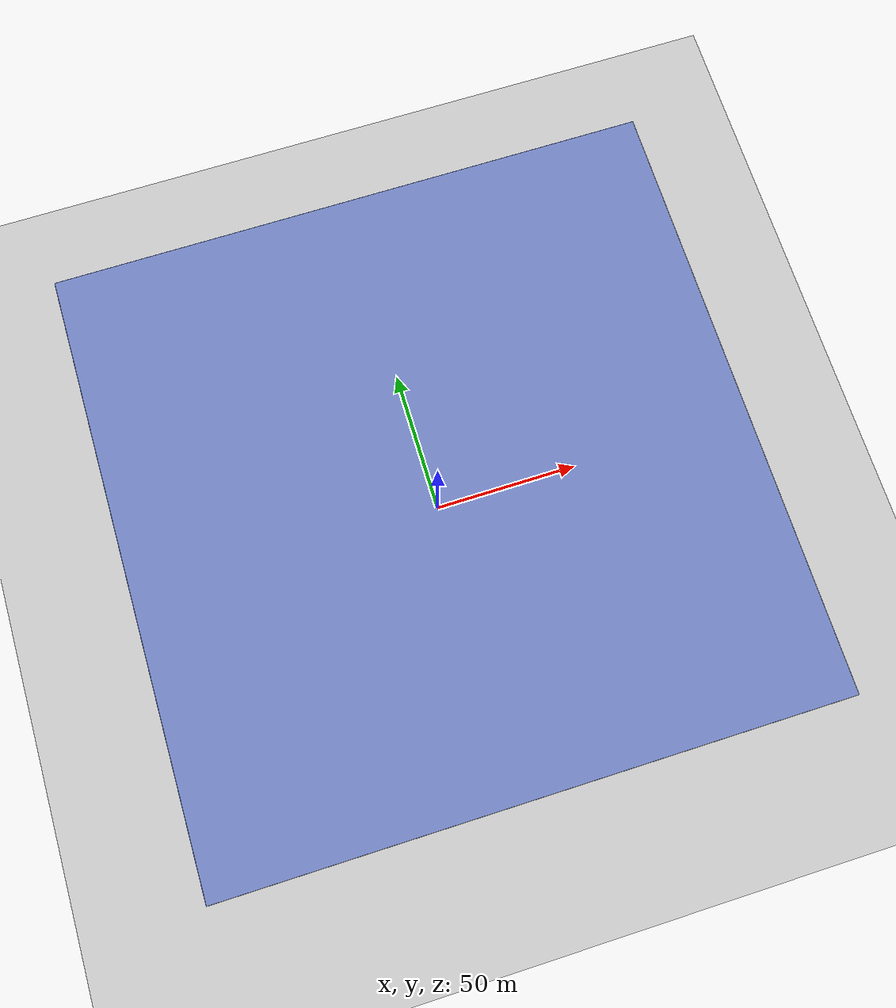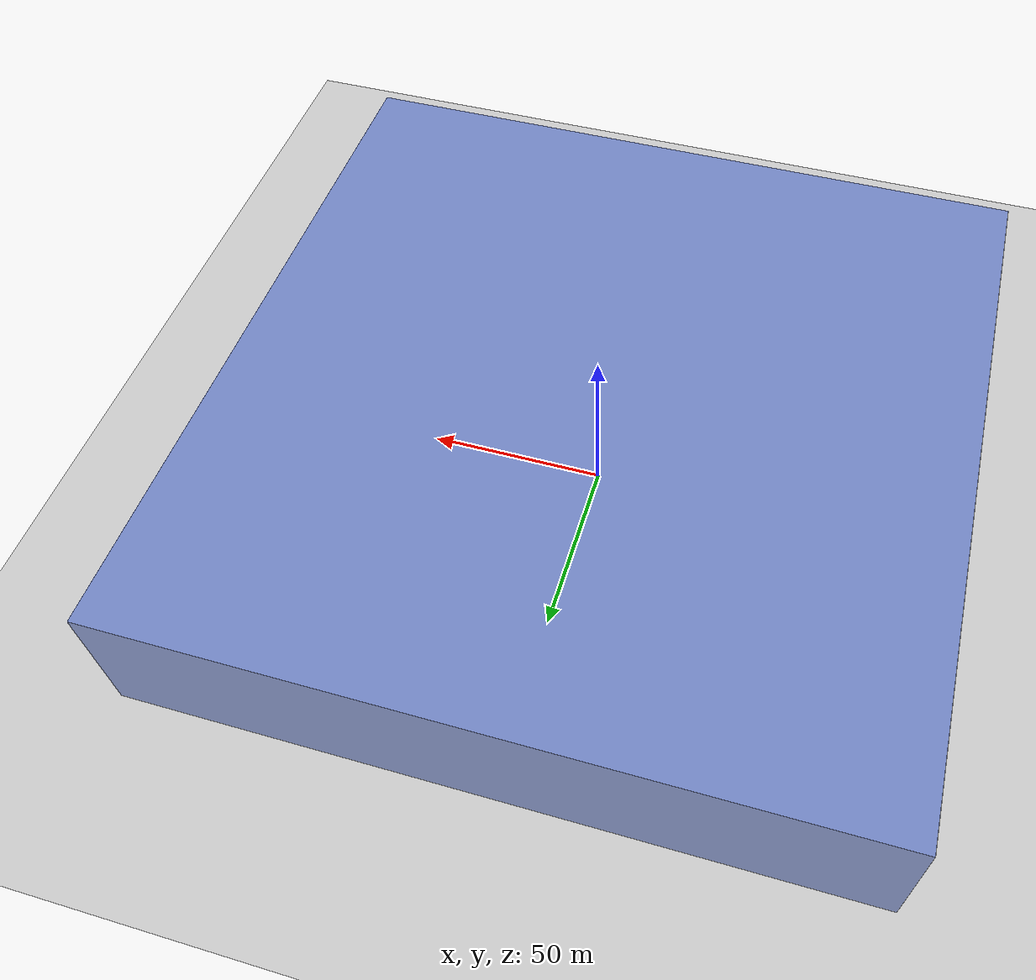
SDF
<?xml version="1.0" ?>
<sdf version="1.5">
  <world name="default">
    <gui>
      <camera name="user_camera">
        <pose>10 11 10 0 0 -2.356</pose>
      </camera>
    </gui>

    <scene>
      <ambient> 0.25 0.3 0.5 1</ambient>
      <grid>false</grid>
    </scene>

    <light type="directional" name="sun">
      <cast_shadows>true</cast_shadows>
      <pose>0 0 100 0 0 0</pose>
      <diffuse>0.8 0.8 0.8 1</diffuse>
      <specular>0.2 0.2 0.2 1</specular>
      <attenuation>
        <range>1000</range>
        <constant>0.9</constant>
        <linear>0.01</linear>
        <quadratic>0.001</quadratic>
      </attenuation>
      <direction>-0.5 0.1 -0.9</direction>
    </light>

    <model name="ground_plane">
      <static>true</static>
      <link name="link">
        <collision name="collision">
          <geometry>
            <plane>
              <normal>0 0 1</normal>
              <size>200 200</size>
            </plane>
          </geometry>
          <surface>
            <contact>
              <collide_bitmask>0xffff</collide_bitmask>
            </contact>
            <friction>
              <ode>
                <mu>100</mu>
                <mu2>50</mu2>
              </ode>
            </friction>
          </surface>
        </collision>
        <visual name="visual">
          <cast_shadows>false</cast_shadows>
          <geometry>
            <plane>
              <normal>0 0 1</normal>
              <size>200 200</size>
            </plane>
          </geometry>
          <material>
            <script>
              <uri>file://media/materials/scripts/gazebo.material</uri>
              <name>Gazebo/Grey</name>
            </script>
          </material>
        </visual>
      </link>
    </model>

    <model name="fin_mechanism">

        <plugin name = "BuoyancyPlugin" filename = "libBuoyancyPlugin.so">
            <fluid_density>1000</fluid_density>
            <link name = "ball_slider_1">
            </link>
        </plugin>

        <link name='ball_slider_1'>
          <self_collide>1</self_collide>
          <pose>0 0 0.5 0 0 0</pose>
          <inertial>
              <pose>2.9965942252574429e-07 -1.3310900448537671e-07 2.1484172495200851e-07 0 0
                  0</pose>
              <mass>0.001507</mass>
              <inertia>
                  <ixx>0</ixx>
                  <ixy>0</ixy>
                  <ixz>0</ixz>
                  <iyy>0</iyy>
                  <iyz>0</iyz>
                  <izz>0</izz>
              </inertia>
          </inertial>
          <collision name='ball_slider_1_collision'>
              <pose>0.12887399999999999 -0.69033900000000004 -0.098472000000000004 0 0 0</pose>
              <geometry>
                  <mesh>
                      <scale>0.001 0.001 0.001</scale>
                      <uri>file://meshes/ball_slider_1.stl</uri>
                  </mesh>
              </geometry>
          </collision>
          <visual name='ball_slider_1_visual'>
              <pose>0.12887399999999999 -0.69033900000000004 -0.098472000000000004 0 0 0</pose>
              <geometry>
                  <mesh>
                      <scale>0.001 0.001 0.001</scale>
                      <uri>file://meshes/ball_slider_1.stl</uri>
                  </mesh>
              </geometry>
              <material>
                  <diffuse>0 0 0 1</diffuse>
                  <ambient>0 0 0 1</ambient>
              </material>
          </visual>
      </link>
    </model>

    <model name="ceiling_plane">
      <static>true</static>
      <pose>0 0 40 0 0 0</pose>
      <link name="link">
        <collision name="collision">
          <geometry>
            <box>
              <size>200 200 .1</size>
            </box>
          </geometry>
        </collision>
        <visual name="visual">
          <cast_shadows>false</cast_shadows>
          <geometry>
            <box>
              <size>200 200 .1</size>
            </box>
          </geometry>
          <material>
            <script>
              <uri>file://media/materials/scripts/gazebo.material</uri>
              <name>Gazebo/BlueTransparent</name>
            </script>
          </material>
        </visual>

        <visual name="visual_sideA">
          <pose>100.05 0 -20 0 0 0</pose>
          <cast_shadows>false</cast_shadows>
          <geometry>
            <box>
              <size>0.1 200 39.9</size>
            </box>
          </geometry>
          <material>
            <script>
              <uri>file://media/materials/scripts/gazebo.material</uri>
              <name>Gazebo/BlueTransparent</name>
            </script>
          </material>
        </visual>

        <visual name="visual_sideB">
          <pose>-100.05 0 -20 0 0 0</pose>
          <cast_shadows>false</cast_shadows>
          <geometry>
            <box>
              <size>0.1 200 39.9</size>
            </box>
          </geometry>
          <material>
            <script>
              <uri>file://media/materials/scripts/gazebo.material</uri>
              <name>Gazebo/BlueTransparent</name>
            </script>
          </material>
        </visual>

        <visual name="visual_sideC">
          <pose>0 100.05 -20 0 0 0</pose>
          <cast_shadows>false</cast_shadows>
          <geometry>
            <box>
              <size>200 0.1 39.9</size>
            </box>
          </geometry>
          <material>
            <script>
              <uri>file://media/materials/scripts/gazebo.material</uri>
              <name>Gazebo/BlueTransparent</name>
            </script>
          </material>
        </visual>

        <visual name="visual_sideD">
          <pose>0 -100.05 -20 0 0 0</pose>
          <cast_shadows>false</cast_shadows>
          <geometry>
            <box>
              <size>200 0.1 39.9</size>
            </box>
          </geometry>
          <material>
            <script>
              <uri>file://media/materials/scripts/gazebo.material</uri>
              <name>Gazebo/BlueTransparent</name>
            </script>
          </material>
        </visual>

      </link>
    </model>

  </world>
</sdf>
